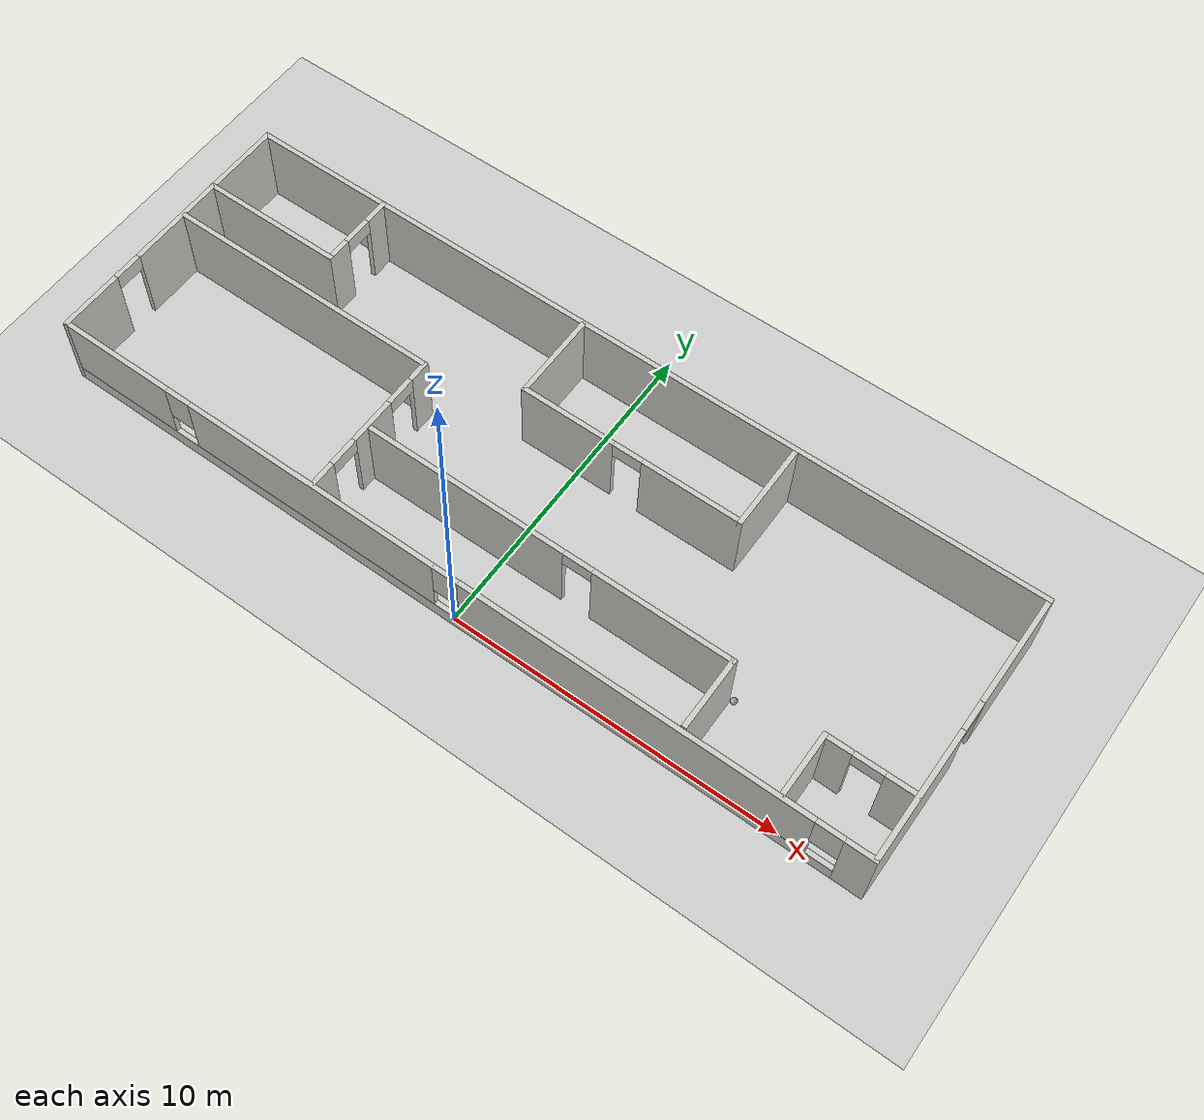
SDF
<sdf version="1.7">
 <world name="default">
  <light name="sun" type="directional">
   <pose>0 0 10 0 -0 0</pose>
   <diffuse>0.8 0.8 0.8 1</diffuse>
   <specular>0.2 0.2 0.2 1</specular>
   <attenuation>
    <range>1000</range>
    <constant>0.9</constant>
    <linear>0.01</linear>
    <quadratic>0.001</quadratic>
   </attenuation>
   <direction>-0.5 0.1 -0.9</direction>
   <spot><inner_angle>0</inner_angle><outer_angle>0</outer_angle><falloff>0</falloff></spot>
  </light>
  <model name="ground_plane">
   <static>1</static>
   <link name="link">
    <collision name="collision">
     <geometry><plane><normal>0 0 1</normal><size>100 100</size></plane></geometry>
     <surface>
      <contact><collide_bitmask>65535</collide_bitmask></contact>
      <friction><ode><mu>100</mu><mu2>50</mu2></ode></friction>
     </surface>
    </collision>
    <visual name="visual">
     <cast_shadows>0</cast_shadows>
     <geometry><plane><normal>0 0 1</normal><size>100 100</size></plane></geometry>
     <material>
      <script><uri>file://media/materials/scripts/gazebo.material</uri><name>Gazebo/Grey</name></script>
     </material>
    </visual>
   </link>
  </model>
  <gravity>0 0 -9.8</gravity>
  <magnetic_field>6e-06 2.3e-05 -4.2e-05</magnetic_field>
  <atmosphere type="adiabatic"/>
  <physics name="default_physics" default="0" type="ode">
   <max_step_size>0.001</max_step_size>
   <real_time_factor>1</real_time_factor>
   <real_time_update_rate>1000</real_time_update_rate>
  </physics>
  <scene><ambient>0.4 0.4 0.4 1</ambient><background>0.7 0.7 0.7 1</background><shadows>1</shadows></scene>
  <spherical_coordinates>
   <surface_model>EARTH_WGS84</surface_model>
   <latitude_deg>0</latitude_deg>
   <longitude_deg>0</longitude_deg>
   <elevation>0</elevation>
   <heading_deg>0</heading_deg>
  </spherical_coordinates>
  <model name="office">
   <pose>-0.357 4.06174 0 0 -0 0</pose>
   <link name="Wall_14">
    <pose>12.8119 0 0 0 -0 -1.5708</pose>
    <visual name="Wall_14_Visual_0">
     <pose>-2.50522 0 1.25 0 -0 0</pose>
     <geometry><box><size>3.48957 0.15 2.5</size></box></geometry>
     <material>
      <script><uri>file://media/materials/scripts/gazebo.material</uri><name>Gazebo/CeilingTiled</name></script>
      <ambient>1 1 1 1</ambient>
     </material>
     <meta><layer>0</layer></meta>
    </visual>
    <collision name="Wall_14_Collision_0">
     <geometry><box><size>3.48957 0.15 2.5</size></box></geometry>
     <pose>-2.50522 0 1.25 0 -0 0</pose>
    </collision>
    <visual name="Wall_14_Visual_1">
     <pose>2.19478 0 1.25 0 -0 0</pose>
     <geometry><box><size>4.11043 0.15 2.5</size></box></geometry>
     <material>
      <script><uri>file://media/materials/scripts/gazebo.material</uri><name>Gazebo/CeilingTiled</name></script>
      <ambient>1 1 1 1</ambient>
     </material>
     <meta><layer>0</layer></meta>
    </visual>
    <collision name="Wall_14_Collision_1">
     <geometry><box><size>4.11043 0.15 2.5</size></box></geometry>
     <pose>2.19478 0 1.25 0 -0 0</pose>
    </collision>
    <visual name="Wall_14_Visual_2">
     <pose>-0.310431 0 2.25 0 -0 0</pose>
     <geometry><box><size>0.9 0.15 0.5</size></box></geometry>
     <material>
      <script><uri>file://media/materials/scripts/gazebo.material</uri><name>Gazebo/CeilingTiled</name></script>
      <ambient>1 1 1 1</ambient>
     </material>
     <meta><layer>0</layer></meta>
    </visual>
    <collision name="Wall_14_Collision_2">
     <geometry><box><size>0.9 0.15 0.5</size></box></geometry>
     <pose>-0.310431 0 2.25 0 -0 0</pose>
    </collision>
   </link>
   <link name="Wall_15">
    <pose>0.011889 -4.175 0 0 -0 3.14159</pose>
    <visual name="Wall_15_Visual_0">
     <pose>-12.4246 0 1.25 0 -0 0</pose>
     <geometry><box><size>0.900741 0.15 2.5</size></box></geometry>
     <material>
      <script><uri>file://media/materials/scripts/gazebo.material</uri><name>Gazebo/CeilingTiled</name></script>
      <ambient>1 1 1 1</ambient>
     </material>
     <meta><layer>0</layer></meta>
    </visual>
    <collision name="Wall_15_Collision_0">
     <geometry><box><size>0.900741 0.15 2.5</size></box></geometry>
     <pose>-12.4246 0 1.25 0 -0 0</pose>
    </collision>
    <visual name="Wall_15_Visual_1">
     <pose>0.450371 0 0.25 0 -0 0</pose>
     <geometry><box><size>24.8493 0.15 0.5</size></box></geometry>
     <material>
      <script><uri>file://media/materials/scripts/gazebo.material</uri><name>Gazebo/CeilingTiled</name></script>
      <ambient>1 1 1 1</ambient>
     </material>
     <meta><layer>0</layer></meta>
    </visual>
    <collision name="Wall_15_Collision_1">
     <geometry><box><size>24.8493 0.15 0.5</size></box></geometry>
     <pose>0.450371 0 0.25 0 -0 0</pose>
    </collision>
    <visual name="Wall_15_Visual_2">
     <pose>-5.91194 0 1.5 0 -0 0</pose>
     <geometry><box><size>10.5246 0.15 2</size></box></geometry>
     <material>
      <script><uri>file://media/materials/scripts/gazebo.material</uri><name>Gazebo/CeilingTiled</name></script>
      <ambient>1 1 1 1</ambient>
     </material>
     <meta><layer>0</layer></meta>
    </visual>
    <collision name="Wall_15_Collision_2">
     <geometry><box><size>10.5246 0.15 2</size></box></geometry>
     <pose>-5.91194 0 1.5 0 -0 0</pose>
    </collision>
    <visual name="Wall_15_Visual_3">
     <pose>4.24794 0 1.5 0 -0 0</pose>
     <geometry><box><size>8.19513 0.15 2</size></box></geometry>
     <material>
      <script><uri>file://media/materials/scripts/gazebo.material</uri><name>Gazebo/CeilingTiled</name></script>
      <ambient>1 1 1 1</ambient>
     </material>
     <meta><layer>0</layer></meta>
    </visual>
    <collision name="Wall_15_Collision_3">
     <geometry><box><size>8.19513 0.15 2</size></box></geometry>
     <pose>4.24794 0 1.5 0 -0 0</pose>
    </collision>
    <visual name="Wall_15_Visual_4">
     <pose>11.0103 0 1.5 0 -0 0</pose>
     <geometry><box><size>3.72949 0.15 2</size></box></geometry>
     <material>
      <script><uri>file://media/materials/scripts/gazebo.material</uri><name>Gazebo/CeilingTiled</name></script>
      <ambient>1 1 1 1</ambient>
     </material>
     <meta><layer>0</layer></meta>
    </visual>
    <collision name="Wall_15_Collision_4">
     <geometry><box><size>3.72949 0.15 2</size></box></geometry>
     <pose>11.0103 0 1.5 0 -0 0</pose>
    </collision>
    <visual name="Wall_15_Visual_5">
     <pose>-11.5743 0 1.9 0 -0 0</pose>
     <geometry><box><size>0.8 0.15 1.2</size></box></geometry>
     <material>
      <script><uri>file://media/materials/scripts/gazebo.material</uri><name>Gazebo/CeilingTiled</name></script>
      <ambient>1 1 1 1</ambient>
     </material>
     <meta><layer>0</layer></meta>
    </visual>
    <collision name="Wall_15_Collision_5">
     <geometry><box><size>0.8 0.15 1.2</size></box></geometry>
     <pose>-11.5743 0 1.9 0 -0 0</pose>
    </collision>
    <visual name="Wall_15_Visual_6">
     <pose>-0.249622 0 1.9 0 -0 0</pose>
     <geometry><box><size>0.8 0.15 1.2</size></box></geometry>
     <material>
      <script><uri>file://media/materials/scripts/gazebo.material</uri><name>Gazebo/CeilingTiled</name></script>
      <ambient>1 1 1 1</ambient>
     </material>
     <meta><layer>0</layer></meta>
    </visual>
    <collision name="Wall_15_Collision_6">
     <geometry><box><size>0.8 0.15 1.2</size></box></geometry>
     <pose>-0.249622 0 1.9 0 -0 0</pose>
    </collision>
    <visual name="Wall_15_Visual_7">
     <pose>8.74551 0 1.9 0 -0 0</pose>
     <geometry><box><size>0.8 0.15 1.2</size></box></geometry>
     <material>
      <script><uri>file://media/materials/scripts/gazebo.material</uri><name>Gazebo/CeilingTiled</name></script>
      <ambient>1 1 1 1</ambient>
     </material>
     <meta><layer>0</layer></meta>
    </visual>
    <collision name="Wall_15_Collision_7">
     <geometry><box><size>0.8 0.15 1.2</size></box></geometry>
     <pose>8.74551 0 1.9 0 -0 0</pose>
    </collision>
   </link>
   <link name="Wall_16">
    <pose>-12.7881 0 0 0 -0 1.5708</pose>
    <visual name="Wall_16_Visual_0">
     <pose>-3.24295 0 1.25 0 -0 0</pose>
     <geometry><box><size>2.01411 0.15 2.5</size></box></geometry>
     <material>
      <script><uri>file://media/materials/scripts/gazebo.material</uri><name>Gazebo/CeilingTiled</name></script>
      <ambient>1 1 1 1</ambient>
     </material>
     <meta><layer>0</layer></meta>
    </visual>
    <collision name="Wall_16_Collision_0">
     <geometry><box><size>2.01411 0.15 2.5</size></box></geometry>
     <pose>-3.24295 0 1.25 0 -0 0</pose>
    </collision>
    <visual name="Wall_16_Visual_1">
     <pose>1.45705 0 1.25 0 -0 0</pose>
     <geometry><box><size>5.58589 0.15 2.5</size></box></geometry>
     <material>
      <script><uri>file://media/materials/scripts/gazebo.material</uri><name>Gazebo/CeilingTiled</name></script>
      <ambient>1 1 1 1</ambient>
     </material>
     <meta><layer>0</layer></meta>
    </visual>
    <collision name="Wall_16_Collision_1">
     <geometry><box><size>5.58589 0.15 2.5</size></box></geometry>
     <pose>1.45705 0 1.25 0 -0 0</pose>
    </collision>
    <visual name="Wall_16_Visual_2">
     <pose>-1.78589 0 2.25 0 -0 0</pose>
     <geometry><box><size>0.9 0.15 0.5</size></box></geometry>
     <material>
      <script><uri>file://media/materials/scripts/gazebo.material</uri><name>Gazebo/CeilingTiled</name></script>
      <ambient>1 1 1 1</ambient>
     </material>
     <meta><layer>0</layer></meta>
    </visual>
    <collision name="Wall_16_Collision_2">
     <geometry><box><size>0.9 0.15 0.5</size></box></geometry>
     <pose>-1.78589 0 2.25 0 -0 0</pose>
    </collision>
   </link>
   <link name="Wall_18">
    <collision name="Wall_18_Collision">
     <geometry><box><size>25.75 0.15 2.5</size></box></geometry>
     <pose>0 0 1.25 0 -0 0</pose>
    </collision>
    <visual name="Wall_18_Visual">
     <pose>0 0 1.25 0 -0 0</pose>
     <geometry><box><size>25.75 0.15 2.5</size></box></geometry>
     <material>
      <script><uri>file://media/materials/scripts/gazebo.material</uri><name>Gazebo/CeilingTiled</name></script>
      <ambient>1 1 1 1</ambient>
     </material>
     <meta><layer>0</layer></meta>
    </visual>
    <pose>0.011889 4.175 0 0 -0 0</pose>
   </link>
   <link name="Wall_20">
    <collision name="Wall_20_Collision">
     <geometry><box><size>8.75 0.15 2.5</size></box></geometry>
     <pose>0 0 1.25 0 -0 0</pose>
    </collision>
    <visual name="Wall_20_Visual">
     <pose>0 0 1.25 0 -0 0</pose>
     <geometry><box><size>8.75 0.15 2.5</size></box></geometry>
     <material>
      <script><uri>file://media/materials/scripts/gazebo.material</uri><name>Gazebo/CeilingTiled</name></script>
      <ambient>1 1 1 1</ambient>
     </material>
     <meta><layer>0</layer></meta>
    </visual>
    <pose>-8.41548 0.533532 0 0 -0 0</pose>
   </link>
   <link name="Wall_21">
    <pose>-4.11548 -1.76647 0 0 -0 -1.5708</pose>
    <visual name="Wall_21_Visual_0">
     <pose>-2.0283 0 1.25 0 -0 0</pose>
     <geometry><box><size>0.693392 0.15 2.5</size></box></geometry>
     <material>
      <script><uri>file://media/materials/scripts/gazebo.material</uri><name>Gazebo/CeilingTiled</name></script>
      <ambient>1 1 1 1</ambient>
     </material>
     <meta><layer>0</layer></meta>
    </visual>
    <collision name="Wall_21_Collision_0">
     <geometry><box><size>0.693392 0.15 2.5</size></box></geometry>
     <pose>-2.0283 0 1.25 0 -0 0</pose>
    </collision>
    <visual name="Wall_21_Visual_1">
     <pose>-0.048201 0 1.25 0 -0 0</pose>
     <geometry><box><size>1.46681 0.15 2.5</size></box></geometry>
     <material>
      <script><uri>file://media/materials/scripts/gazebo.material</uri><name>Gazebo/CeilingTiled</name></script>
      <ambient>1 1 1 1</ambient>
     </material>
     <meta><layer>0</layer></meta>
    </visual>
    <collision name="Wall_21_Collision_1">
     <geometry><box><size>1.46681 0.15 2.5</size></box></geometry>
     <pose>-0.048201 0 1.25 0 -0 0</pose>
    </collision>
    <visual name="Wall_21_Visual_2">
     <pose>1.9801 0 1.25 0 -0 0</pose>
     <geometry><box><size>0.789794 0.15 2.5</size></box></geometry>
     <material>
      <script><uri>file://media/materials/scripts/gazebo.material</uri><name>Gazebo/CeilingTiled</name></script>
      <ambient>1 1 1 1</ambient>
     </material>
     <meta><layer>0</layer></meta>
    </visual>
    <collision name="Wall_21_Collision_2">
     <geometry><box><size>0.789794 0.15 2.5</size></box></geometry>
     <pose>1.9801 0 1.25 0 -0 0</pose>
    </collision>
    <visual name="Wall_21_Visual_3">
     <pose>-1.23161 0 2.25 0 -0 0</pose>
     <geometry><box><size>0.9 0.15 0.5</size></box></geometry>
     <material>
      <script><uri>file://media/materials/scripts/gazebo.material</uri><name>Gazebo/CeilingTiled</name></script>
      <ambient>1 1 1 1</ambient>
     </material>
     <meta><layer>0</layer></meta>
    </visual>
    <collision name="Wall_21_Collision_3">
     <geometry><box><size>0.9 0.15 0.5</size></box></geometry>
     <pose>-1.23161 0 2.25 0 -0 0</pose>
    </collision>
    <visual name="Wall_21_Visual_4">
     <pose>1.13521 0 2.25 0 -0 0</pose>
     <geometry><box><size>0.9 0.15 0.5</size></box></geometry>
     <material>
      <script><uri>file://media/materials/scripts/gazebo.material</uri><name>Gazebo/CeilingTiled</name></script>
      <ambient>1 1 1 1</ambient>
     </material>
     <meta><layer>0</layer></meta>
    </visual>
    <collision name="Wall_21_Collision_4">
     <geometry><box><size>0.9 0.15 0.5</size></box></geometry>
     <pose>1.13521 0 2.25 0 -0 0</pose>
    </collision>
   </link>
   <link name="Wall_23">
    <pose>1.71673 -1.90091 0 0 -0 0</pose>
    <visual name="Wall_23_Visual_0">
     <pose>-2.59349 0 1.25 0 -0 0</pose>
     <geometry><box><size>6.31303 0.15 2.5</size></box></geometry>
     <material>
      <script><uri>file://media/materials/scripts/gazebo.material</uri><name>Gazebo/CeilingTiled</name></script>
      <ambient>1 1 1 1</ambient>
     </material>
     <meta><layer>0</layer></meta>
    </visual>
    <collision name="Wall_23_Collision_0">
     <geometry><box><size>6.31303 0.15 2.5</size></box></geometry>
     <pose>-2.59349 0 1.25 0 -0 0</pose>
    </collision>
    <visual name="Wall_23_Visual_1">
     <pose>3.60651 0 1.25 0 -0 0</pose>
     <geometry><box><size>4.28697 0.15 2.5</size></box></geometry>
     <material>
      <script><uri>file://media/materials/scripts/gazebo.material</uri><name>Gazebo/CeilingTiled</name></script>
      <ambient>1 1 1 1</ambient>
     </material>
     <meta><layer>0</layer></meta>
    </visual>
    <collision name="Wall_23_Collision_1">
     <geometry><box><size>4.28697 0.15 2.5</size></box></geometry>
     <pose>3.60651 0 1.25 0 -0 0</pose>
    </collision>
    <visual name="Wall_23_Visual_2">
     <pose>1.01303 0 2.25 0 -0 0</pose>
     <geometry><box><size>0.9 0.15 0.5</size></box></geometry>
     <material>
      <script><uri>file://media/materials/scripts/gazebo.material</uri><name>Gazebo/CeilingTiled</name></script>
      <ambient>1 1 1 1</ambient>
     </material>
     <meta><layer>0</layer></meta>
    </visual>
    <collision name="Wall_23_Collision_2">
     <geometry><box><size>0.9 0.15 0.5</size></box></geometry>
     <pose>1.01303 0 2.25 0 -0 0</pose>
    </collision>
   </link>
   <link name="Wall_26">
    <collision name="Wall_26_Collision">
     <geometry><box><size>2.25 0.15 2.5</size></box></geometry>
     <pose>0 0 1.25 0 -0 0</pose>
    </collision>
    <visual name="Wall_26_Visual">
     <pose>0 0 1.25 0 -0 0</pose>
     <geometry><box><size>2.25 0.15 2.5</size></box></geometry>
     <material>
      <script><uri>file://media/materials/scripts/gazebo.material</uri><name>Gazebo/CeilingTiled</name></script>
      <ambient>1 1 1 1</ambient>
     </material>
     <meta><layer>0</layer></meta>
    </visual>
    <pose>7.39173 -2.95091 0 0 -0 -1.5708</pose>
   </link>
   <link name="Wall_28">
    <collision name="Wall_28_Collision">
     <geometry><box><size>2.75 0.15 2.5</size></box></geometry>
     <pose>0 0 1.25 0 -0 0</pose>
    </collision>
    <visual name="Wall_28_Visual">
     <pose>0 0 1.25 0 -0 0</pose>
     <geometry><box><size>2.75 0.15 2.5</size></box></geometry>
     <material>
      <script><uri>file://media/materials/scripts/gazebo.material</uri><name>Gazebo/CeilingTiled</name></script>
      <ambient>1 1 1 1</ambient>
     </material>
     <meta><layer>0</layer></meta>
    </visual>
    <pose>-1.46288 2.79733 0 0 -0 -1.5708</pose>
   </link>
   <link name="Wall_29">
    <pose>1.96212 1.49733 0 0 -0 0</pose>
    <visual name="Wall_29_Visual_0">
     <pose>-2.01382 0 1.25 0 -0 0</pose>
     <geometry><box><size>2.97235 0.15 2.5</size></box></geometry>
     <material>
      <script><uri>file://media/materials/scripts/gazebo.material</uri><name>Gazebo/CeilingTiled</name></script>
      <ambient>1 1 1 1</ambient>
     </material>
     <meta><layer>0</layer></meta>
    </visual>
    <collision name="Wall_29_Collision_0">
     <geometry><box><size>2.97235 0.15 2.5</size></box></geometry>
     <pose>-2.01382 0 1.25 0 -0 0</pose>
    </collision>
    <visual name="Wall_29_Visual_1">
     <pose>1.93618 0 1.25 0 -0 0</pose>
     <geometry><box><size>3.12765 0.15 2.5</size></box></geometry>
     <material>
      <script><uri>file://media/materials/scripts/gazebo.material</uri><name>Gazebo/CeilingTiled</name></script>
      <ambient>1 1 1 1</ambient>
     </material>
     <meta><layer>0</layer></meta>
    </visual>
    <collision name="Wall_29_Collision_1">
     <geometry><box><size>3.12765 0.15 2.5</size></box></geometry>
     <pose>1.93618 0 1.25 0 -0 0</pose>
    </collision>
    <visual name="Wall_29_Visual_2">
     <pose>-0.077649 0 2.25 0 -0 0</pose>
     <geometry><box><size>0.9 0.15 0.5</size></box></geometry>
     <material>
      <script><uri>file://media/materials/scripts/gazebo.material</uri><name>Gazebo/CeilingTiled</name></script>
      <ambient>1 1 1 1</ambient>
     </material>
     <meta><layer>0</layer></meta>
    </visual>
    <collision name="Wall_29_Collision_2">
     <geometry><box><size>0.9 0.15 0.5</size></box></geometry>
     <pose>-0.077649 0 2.25 0 -0 0</pose>
    </collision>
   </link>
   <link name="Wall_30">
    <collision name="Wall_30_Collision">
     <geometry><box><size>2.75 0.15 2.5</size></box></geometry>
     <pose>0 0 1.25 0 -0 0</pose>
    </collision>
    <visual name="Wall_30_Visual">
     <pose>0 0 1.25 0 -0 0</pose>
     <geometry><box><size>2.75 0.15 2.5</size></box></geometry>
     <material>
      <script><uri>file://media/materials/scripts/gazebo.material</uri><name>Gazebo/CeilingTiled</name></script>
      <ambient>1 1 1 1</ambient>
     </material>
     <meta><layer>0</layer></meta>
    </visual>
    <pose>5.38712 2.79733 0 0 -0 1.5708</pose>
   </link>
   <link name="Wall_33">
    <pose>11.5056 -2.22544 0 0 -0 3.14159</pose>
    <visual name="Wall_33_Visual_0">
     <pose>-0.886267 0 1.25 0 -0 0</pose>
     <geometry><box><size>0.977465 0.15 2.5</size></box></geometry>
     <material>
      <script><uri>file://media/materials/scripts/gazebo.material</uri><name>Gazebo/CeilingTiled</name></script>
      <ambient>1 1 1 1</ambient>
     </material>
     <meta><layer>0</layer></meta>
    </visual>
    <collision name="Wall_33_Collision_0">
     <geometry><box><size>0.977465 0.15 2.5</size></box></geometry>
     <pose>-0.886267 0 1.25 0 -0 0</pose>
    </collision>
    <visual name="Wall_33_Visual_1">
     <pose>0.938733 0 1.25 0 -0 0</pose>
     <geometry><box><size>0.872535 0.15 2.5</size></box></geometry>
     <material>
      <script><uri>file://media/materials/scripts/gazebo.material</uri><name>Gazebo/CeilingTiled</name></script>
      <ambient>1 1 1 1</ambient>
     </material>
     <meta><layer>0</layer></meta>
    </visual>
    <collision name="Wall_33_Collision_1">
     <geometry><box><size>0.872535 0.15 2.5</size></box></geometry>
     <pose>0.938733 0 1.25 0 -0 0</pose>
    </collision>
    <visual name="Wall_33_Visual_2">
     <pose>0.052465 0 2.25 0 -0 0</pose>
     <geometry><box><size>0.9 0.15 0.5</size></box></geometry>
     <material>
      <script><uri>file://media/materials/scripts/gazebo.material</uri><name>Gazebo/CeilingTiled</name></script>
      <ambient>1 1 1 1</ambient>
     </material>
     <meta><layer>0</layer></meta>
    </visual>
    <collision name="Wall_33_Collision_2">
     <geometry><box><size>0.9 0.15 0.5</size></box></geometry>
     <pose>0.052465 0 2.25 0 -0 0</pose>
    </collision>
   </link>
   <link name="Wall_34">
    <collision name="Wall_34_Collision">
     <geometry><box><size>2 0.15 2.5</size></box></geometry>
     <pose>0 0 1.25 0 -0 0</pose>
    </collision>
    <visual name="Wall_34_Visual">
     <pose>0 0 1.25 0 -0 0</pose>
     <geometry><box><size>2 0.15 2.5</size></box></geometry>
     <material>
      <script><uri>file://media/materials/scripts/gazebo.material</uri><name>Gazebo/CeilingTiled</name></script>
      <ambient>1 1 1 1</ambient>
     </material>
     <meta><layer>0</layer></meta>
    </visual>
    <pose>10.2056 -3.15044 0 0 -0 -1.5708</pose>
   </link>
   <link name="Wall_36">
    <pose>-8.46189 2.98996 0 0 -0 -1.5708</pose>
    <visual name="Wall_36_Visual_0">
     <pose>-0.845796 0 1.25 0 -0 0</pose>
     <geometry><box><size>0.808407 0.15 2.5</size></box></geometry>
     <material>
      <script><uri>file://media/materials/scripts/gazebo.material</uri><name>Gazebo/CeilingTiled</name></script>
      <ambient>1 1 1 1</ambient>
     </material>
     <meta><layer>0</layer></meta>
    </visual>
    <collision name="Wall_36_Collision_0">
     <geometry><box><size>0.808407 0.15 2.5</size></box></geometry>
     <pose>-0.845796 0 1.25 0 -0 0</pose>
    </collision>
    <visual name="Wall_36_Visual_1">
     <pose>0.854204 0 1.25 0 -0 0</pose>
     <geometry><box><size>0.791593 0.15 2.5</size></box></geometry>
     <material>
      <script><uri>file://media/materials/scripts/gazebo.material</uri><name>Gazebo/CeilingTiled</name></script>
      <ambient>1 1 1 1</ambient>
     </material>
     <meta><layer>0</layer></meta>
    </visual>
    <collision name="Wall_36_Collision_1">
     <geometry><box><size>0.791593 0.15 2.5</size></box></geometry>
     <pose>0.854204 0 1.25 0 -0 0</pose>
    </collision>
    <visual name="Wall_36_Visual_2">
     <pose>0.008407 0 2.25 0 -0 0</pose>
     <geometry><box><size>0.9 0.15 0.5</size></box></geometry>
     <material>
      <script><uri>file://media/materials/scripts/gazebo.material</uri><name>Gazebo/CeilingTiled</name></script>
      <ambient>1 1 1 1</ambient>
     </material>
     <meta><layer>0</layer></meta>
    </visual>
    <collision name="Wall_36_Collision_2">
     <geometry><box><size>0.9 0.15 0.5</size></box></geometry>
     <pose>0.008407 0 2.25 0 -0 0</pose>
    </collision>
   </link>
   <link name="Wall_41">
    <collision name="Wall_41_Collision">
     <geometry><box><size>4.5 0.15 2.5</size></box></geometry>
     <pose>0 0 1.25 0 -0 0</pose>
    </collision>
    <visual name="Wall_41_Visual">
     <pose>0 0 1.25 0 -0 0</pose>
     <geometry><box><size>4.5 0.15 2.5</size></box></geometry>
     <material>
      <script><uri>file://media/materials/scripts/gazebo.material</uri><name>Gazebo/CeilingTiled</name></script>
      <ambient>1 1 1 1</ambient>
     </material>
     <meta><layer>0</layer></meta>
    </visual>
    <pose>-10.6369 1.81496 0 0 -0 3.14159</pose>
   </link>
   <static>1</static>
  </model>
  <model name="my_ball">
   <link name="link_0">
    <inertial>
     <mass>1</mass>
     <inertia><ixx>0.1</ixx><ixy>0</ixy><ixz>0</ixz><iyy>0.1</iyy><iyz>0</iyz><izz>0.1</izz></inertia>
    </inertial>
    <visual name="visual">
     <geometry><sphere><radius>0.1</radius></sphere></geometry>
     <material>
      <lighting>1</lighting>
      <script><uri>file://media/materials/scripts/gazebo.material</uri><name>Gazebo/Grey</name></script>
      <shader type="pixel"><normal_map>__default__</normal_map></shader>
      <ambient>1 1 1 1</ambient>
      <diffuse>1 1 1 1</diffuse>
      <specular>1 1 1 1</specular>
      <emissive>1 1 1 1</emissive>
     </material>
    </visual>
    <collision name="collision">
     <geometry><sphere><radius>0.1</radius></sphere></geometry>
     <surface>
      <friction>
       <ode><mu>1</mu><mu2>1</mu2><fdir1>0 0 0</fdir1><slip1>0</slip1><slip2>0</slip2></ode>
       <torsional>
        <coefficient>1</coefficient>
        <patch_radius>0</patch_radius>
        <surface_radius>0</surface_radius>
        <use_patch_radius>1</use_patch_radius>
        <ode><slip>0</slip></ode>
       </torsional>
      </friction>
      <bounce><restitution_coefficient>0</restitution_coefficient><threshold>1e+06</threshold></bounce>
      <contact>
       <collide_without_contact>0</collide_without_contact>
       <collide_without_contact_bitmask>1</collide_without_contact_bitmask>
       <collide_bitmask>1</collide_bitmask>
       <ode>
        <soft_cfm>0</soft_cfm>
        <soft_erp>0.2</soft_erp>
        <kp>1e+13</kp>
        <kd>1</kd>
        <max_vel>0.01</max_vel>
        <min_depth>0</min_depth>
       </ode>
       <bullet>
        <split_impulse>1</split_impulse>
        <split_impulse_penetration_threshold>-0.01</split_impulse_penetration_threshold>
        <soft_cfm>0</soft_cfm>
        <soft_erp>0.2</soft_erp>
        <kp>1e+13</kp>
        <kd>1</kd>
       </bullet>
      </contact>
     </surface>
    </collision>
   </link>
   <static>0</static>
   <pose>7.21233 2.30555 0.1 -0.034636 -0.222715 0.298044</pose>
  </model>
 </world>
</sdf>
